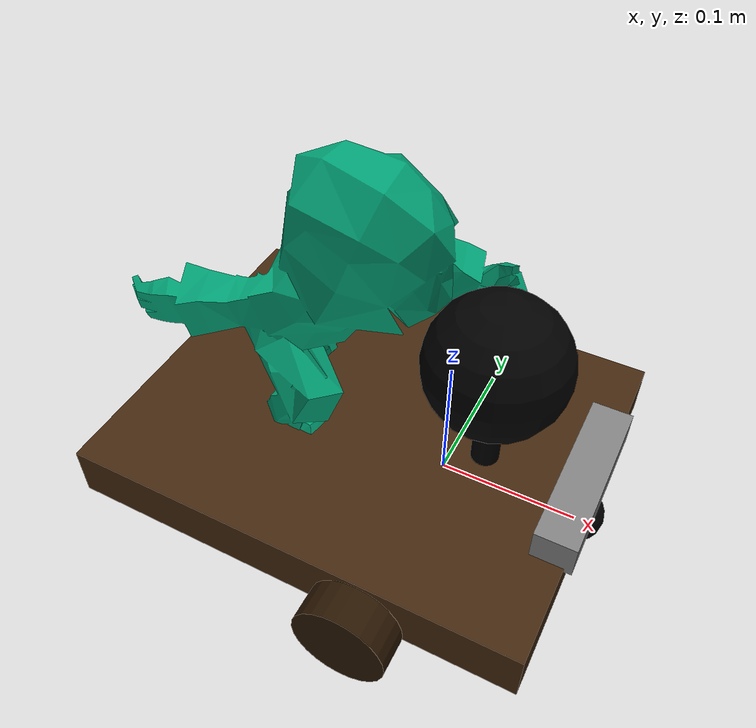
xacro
<?xml version="1.0" ?>
<robot name='robot' xmlns:xacro="http://ros.org/wiki/xacro">

    <!--xacro:include filename="$(find monk)/urdf/gazebo.urdf.xacro" /-->
    <!--xacro:include filename="$(find robot_description)/urdf/lidar.urdf.xacro" /-->
    <!--xacro:include filename="$(find robot_description)/urdf/depth.urdf.xacro" /-->

    <xacro:property name="chassis_length" value="0.335"/>
    <xacro:property name="chassis_width" value="0.265"/>
    <xacro:property name="chassis_height" value="0.04"/>
    <xacro:property name="wheel_radius" value="0.033"/>
    <xacro:property name="wheel_thickness" value="0.026"/>
    <xacro:property name="wheel_mass" value="0.05"/>
    <xacro:property name="wheel_offset_x" value="0.226"/>
    <xacro:property name="wheel_offset_y" value="0.1485"/>
    <xacro:property name="wheel_offset_z" value="0.01"/>
    <xacro:property name="caster_wheel_radius" value="0.03"/>
    <xacro:property name="caster_wheel_mass" value="0.01"/>
    <xacro:property name="caster_wheel_offset_x" value="0.075"/>
    <xacro:property name="caster_wheel_offset_z" value="${wheel_offset_z - wheel_radius + caster_wheel_radius}"/>
    <xacro:property name="mass" value="1.0"/>

    <xacro:property name="monk_mass" value="0.01"/>
    <xacro:property name="monk_radius" value="0.05"/>
    <xacro:property name="monk_height" value="0.2"/>

    <gazebo>
        <plugin
            filename="gz-sim-joint-state-publisher-system"
            name="gz::sim::systems::JointStatePublisher">
        </plugin>

        <plugin
            filename="gz-sim-diff-drive-system"
            name="gz::sim::systems::DiffDrive">
            <left_joint>left_wheel_joint</left_joint>
            <right_joint>right_wheel_joint</right_joint>
            <child_frame_id>robot/base_link</child_frame_id>
            <wheel_separation>${2*wheel_offset_y}</wheel_separation>
            <wheel_radius>${wheel_radius}</wheel_radius>
            <odom_publish_frequency>10</odom_publish_frequency>
        </plugin>

        <plugin filename="gz-sim-sensors-system"
                name="gz::sim::systems::Sensors">
            <render_engine>ogre2</render_engine>
        </plugin>

        <plugin filename="gz-sim-imu-system"
                name="gz::sim::systems::Imu">
        </plugin>
    </gazebo>

    <material name="white">
        <color rgba="1 1 1 1" />
    </material>

    <material name="orange">
        <color rgba="1 0.3 0.1 1"/>
    </material>

    <material name="blue">
        <color rgba="0.2 0.2 1 1"/>
    </material>

    <material name="black">
        <color rgba="0 0 0 1"/>
    </material>

    <material name="red">
        <color rgba="1 0 0 1"/>
    </material>

    <material name="kor_1">
        <color rgba="${42/256} ${22/256} ${2/256} 1"/>
    </material>

    <material name="kor_2">
        <color rgba="${67/256} ${39/256} ${15/256} 1"/>
    </material>

    <link name="base_link">
    </link>

    <link name="base_footprint">
    </link>

    <link name="monk">
        <visual>
            <geometry>
                <!--mesh filename="$(find monk)/source/Sketchfab_2017_11_01_03_49_01.dae" scale="0.1 0.1 0.1"/-->
                <mesh filename="file:///home/evrey/ros2_ws/6/ex01/monk/source/Sketchfab_2017_11_01_03_49_01.dae" scale="0.2 0.2 0.2"/>
            </geometry>
            <origin rpy="0 0 0" xyz="0 0 0"/>
        </visual>
        <collision>
            <geometry>
                <mesh filename="file:///home/evrey/ros2_ws/6/ex01/monk/source/Sketchfab_2017_11_01_03_49_01.dae" scale="0.2 0.2 0.2"/>
            </geometry>
            <origin rpy="0 0 0" xyz="0 0 0"/>
        </collision>
        <inertial>
            <origin xyz="0 0 ${monk_height/2}" rpy="0 0 0"/>
            <mass value="${monk_mass}" />
            <inertia ixx="${(1/12) * monk_mass * (3*monk_radius*monk_radius + monk_height*monk_height)}" ixy="0.0" ixz="0.0"
                     iyy="${(1/12) * monk_mass * (3*monk_radius*monk_radius + monk_height*monk_height)}" iyz="0.0"
                     izz="${(1/2) * monk_mass * (monk_radius*monk_radius)}" />
        </inertial>
    </link>

    <joint name="monk_joint" type="fixed">
        <parent link="base_link"/>
        <child link="monk"/>
        <origin xyz="${- chassis_length / 3} 0 ${chassis_height - wheel_offset_z - 0.01}" rpy="0 0 ${pi/2}"/>
    </joint>

    <joint name="base_footprint_joint" type="fixed">
        <parent link="base_link"/>
        <child link="base_footprint"/>
        <origin xyz="0 0 ${-chassis_height}" rpy="0 0 0"/>
    </joint>

    <joint name="chassis_joint" type="fixed">
        <parent link="base_link"/>
        <child link="chassis"/>
        <origin xyz="${-wheel_offset_x} 0 ${-wheel_offset_z}"/>
    </joint>

    <link name='chassis'>

        <inertial>
            <origin xyz="${chassis_length/2} 0 ${chassis_height/2}" rpy="0 0 0"/>
            <mass value="${mass}" />
            <inertia ixx="${(1/12) * mass * (chassis_width*chassis_width+chassis_height*chassis_height)}" ixy="0.0" ixz="0.0"
                     iyy="${(1/12) * mass * (chassis_length*chassis_length+chassis_height*chassis_height)}" iyz="0.0"
                     izz="${(1/12) * mass * (chassis_length*chassis_length+chassis_width*chassis_width)}" />
        </inertial>
        <visual>
            <origin xyz="${chassis_length/2} 0 ${chassis_height/2}"/>
            <geometry>
                <box size="${chassis_length} ${chassis_width} ${chassis_height}"/>
            </geometry>
            <material name="kor_2"/>
        </visual>
        <collision>
            <origin xyz="${chassis_length/2} 0 ${chassis_height/2}"/>
            <geometry>
                <box size="${chassis_length} ${chassis_width} ${chassis_height}"/>
            </geometry>
        </collision>

    </link>

    <gazebo reference="chassis">
        <material>Gazebo/Orange</material>
    </gazebo>

    <joint name="left_wheel_joint" type="continuous">
        <parent link="base_link"/>
        <child link="left_wheel"/>
        <origin xyz="0 ${wheel_offset_y} 0" rpy="-${pi/2} 0 0" />
        <axis xyz="0 0 1"/>
    </joint>

    <link name="left_wheel">
        <visual>
            <geometry>
                <cylinder radius="${wheel_radius}" length="${wheel_thickness}"/>
            </geometry>
            <material name="kor_1"/>
        </visual>
        <collision>
            <geometry>
                <sphere radius="${wheel_radius}"/>
            </geometry>
        </collision>
        <inertial>
            <origin xyz="0 0 0" rpy="0 0 0"/>
            <mass value="${wheel_mass}" />
            <inertia ixx="${(1/12) * wheel_mass * (3*wheel_radius*wheel_radius + wheel_thickness*wheel_thickness)}" ixy="0.0" ixz="0.0"
                     iyy="${(1/12) * wheel_mass * (3*wheel_radius*wheel_radius + wheel_thickness*wheel_thickness)}" iyz="0.0"
                     izz="${(1/2) * wheel_mass * (wheel_radius*wheel_radius)}" />
        </inertial>
    </link>

    <gazebo reference="left_wheel">
        <material>Gazebo/Blue</material>
    </gazebo>

    <joint name="right_wheel_joint" type="continuous">
        <parent link="base_link"/>
        <child link="right_wheel"/>
        <origin xyz="0 ${-wheel_offset_y} 0" rpy="${pi/2} 0 0" />
        <axis xyz="0 0 -1"/>
    </joint>

    <link name="right_wheel">
        <visual>
            <geometry>
                <cylinder radius="${wheel_radius}" length="${wheel_thickness}"/>
            </geometry>
            <material name="kor_1"/>
        </visual>
        <collision>
            <geometry>
                <sphere radius="${wheel_radius}"/>
            </geometry>
        </collision>
        <inertial>
            <origin xyz="0 0 0" rpy="0 0 0"/>
            <mass value="${wheel_mass}" />
            <inertia ixx="${(1/12) * wheel_mass * (3*wheel_radius*wheel_radius + wheel_thickness*wheel_thickness)}" ixy="0.0" ixz="0.0"
                     iyy="${(1/12) * wheel_mass * (3*wheel_radius*wheel_radius + wheel_thickness*wheel_thickness)}" iyz="0.0"
                     izz="${(1/2) * wheel_mass * (wheel_radius*wheel_radius)}" />
        </inertial>
    </link>

    <gazebo reference="right_wheel">
        <material>Gazebo/Blue</material>
    </gazebo>

    <joint name="caster_wheel_joint" type="fixed">
        <parent link="chassis"/>
        <child link="caster_wheel"/>
        <origin xyz="${caster_wheel_offset_x} 0 ${caster_wheel_offset_z}"/>
    </joint>

    <link name="caster_wheel">
        <visual>
            <geometry>
                <sphere radius="${caster_wheel_radius}"/>
            </geometry>
            <material name="kor_1"/>
        </visual>
        <collision>
            <geometry>
                <sphere radius="${caster_wheel_radius}"/>
            </geometry>
        </collision>
        <inertial>
            <origin xyz="0 0 0" rpy="0 0 0"/>
            <mass value="${caster_wheel_mass}" />
            <inertia ixx="${(2/5) * caster_wheel_mass * (caster_wheel_radius*caster_wheel_radius)}" ixy="0.0" ixz="0.0"
                     iyy="${(2/5) * caster_wheel_mass * (caster_wheel_radius*caster_wheel_radius)}" iyz="0.0"
                     izz="${(2/5) * caster_wheel_mass * (caster_wheel_radius*caster_wheel_radius)}" />
        </inertial>
    </link>

    <gazebo reference="caster_wheel">
        <material>Gazebo/White</material>
        <mu1 value="0.001"/>
        <mu2 value="0.001"/>
    </gazebo>

    <joint name="laser_joint" type="fixed">
        <parent link="base_link"/>
        <child link="laser_frame"/>
        <origin xyz="0.03 0 0.12" rpy="0 0 0"/>
    </joint>

    <link name="laser_frame">
        <visual>
            <geometry>
                <sphere radius="0.05"/>
            </geometry>
            <material name="black"/>
        </visual>
        <visual>
            <origin xyz="0 0 -0.05"/>
            <geometry>
                <cylinder radius="0.01" length="0.1"/>
            </geometry>
            <material name="black"/>
        </visual>
        <collision>
            <geometry>
                <cylinder radius="0.05" length="0.04"/>
            </geometry>
        </collision>
        <inertial>
            <origin xyz="0 0 0" rpy="0 0 0"/>
            <mass value="0.1" />
            <inertia ixx="${(1/12) * 0.1 * (3*0.05*0.05 + 0.04*0.04)}" ixy="0.0" ixz="0.0"
                     iyy="${(1/12) * 0.1 * (3*0.05*0.05 + 0.04*0.04)}" iyz="0.0"
                     izz="${(1/2) * 0.1 * (0.05*0.05)}" />
        </inertial>
    </link>

    <gazebo reference="laser_frame">
        <material>Gazebo/Black</material>

        <sensor name='laser_sensor_frame' type='gpu_lidar'>"
            <gz_frame_id>robot/laser_frame</gz_frame_id>
            <pose> 0 0 0 0 0 0 </pose>
            <visualize>true</visualize>
            <always_on>true</always_on>
            <update_rate>5</update_rate>
            <ray>
                <scan>
                    <horizontal>
                        <samples>360</samples>
                        <min_angle>-3.14</min_angle>
                        <max_angle>3.14</max_angle>
                    </horizontal>
                </scan>
                <range>
                    <min>0.3</min>
                    <max>12</max>
                </range>
                <noise>
                    <type>gaussian</type>
                    <mean>0.0</mean>
                    <stddev>0.007</stddev>
                </noise>
            </ray>
        </sensor>
    </gazebo>

    <xacro:property name="M_PI" value="3.1415926535897931" />

    <joint name="depth_joint" type="fixed">
        <parent link="base_link"/>
        <child link="depth_frame"/>
        <origin xyz="0.1 0 ${chassis_height}" rpy="${M_PI/2} 0 0"/>
    </joint>

    <material name="aluminum">
      <color rgba="0.5 0.5 0.5 1"/>
    </material>

    <link name="depth_frame">
        <visual>
            <origin xyz="0 0 0" rpy="${M_PI/2} 0 ${M_PI/2}"/>
            <geometry>
                <!--mesh filename="file://$(find robot_description)/urdf/d455.stl" scale="0.001 0.001 0.001"/-->
                <box size="0.026 0.124 0.029"/>
            </geometry>
            <material name="aluminum"/>
        </visual>
        <collision>
            <origin xyz="0.00465 -0.0475 0" rpy="${M_PI/2} 0 ${M_PI/2}"/>
            <geometry>
                <box size="0.026 0.124 0.029"/>
            </geometry>
        </collision>
        <inertial>
            <origin xyz="0 0 0" rpy="0 0 0"/>
            <mass value="0.116" />
            <inertia ixx="${(1/12) * 0.116 * (0.026*0.026+0.029*0.029)}" ixy="0.0" ixz="0.0"
                     iyy="${(1/12) * 0.116 * (0.124*0.124+0.029*0.029)}" iyz="0.0"
                     izz="${(1/12) * 0.116 * (0.124*0.124+0.026*0.026)}" />
        </inertial>
    </link>

    <gazebo reference="depth_frame">
        <sensor name='depth_sensor_frame' type='depth_camera'>"
            <gz_frame_id>robot/depth_frame</gz_frame_id>
            <pose> 0 0 0 0 0 0 </pose>
            <always_on>true</always_on>
            <update_rate>10</update_rate>
            <camera>
                <horizontal_fov>1.51843645</horizontal_fov>
                <image>
                    <width>848</width>
                    <height>480</height>
                    <format>R_FLOAT32</format>
                </image>
                <clip>
                    <near>0.1</near>
                    <far>10</far>
                </clip>
                <lens>
                    <intrinsics>
                    <fx>421.61578369140625</fx>
                    <fy>421.61578369140625</fy>
                    <cx>422.2854309082031</cx>
                    <cy>236.57237243652344</cy>
                    <s>0</s>
                    </intrinsics>
                </lens>
                <noise>
                    <type>gaussian</type>
                    <mean>0.0</mean>
                    <stddev>0.007</stddev>
                </noise>
            </camera>
        </sensor>
        <sensor name="color_sensor_frame" type="camera">
            <gz_frame_id>robot/depth_frame</gz_frame_id>
            <pose>0 0 0 0 0 0</pose>
            <update_rate>30</update_rate>
            <always_on>true</always_on>
            <camera>
                <horizontal_fov>1.20427718</horizontal_fov>
                <image>
                    <width>848</width>
                    <height>480</height>
                </image>
                <clip>
                    <near>0.1</near>
                    <far>50</far>
                </clip>
                <lens>
                    <intrinsics>
                    <fx>615.9603271484375</fx>
                    <fy>616.227294921875</fy>
                    <cx>419.83026123046875</cx>
                    <cy>245.1431427001953</cy>
                    <s>0</s>
                    </intrinsics>
                </lens>
            </camera>
        </sensor>
    </gazebo>

    <joint name="imu_joint" type="fixed">
        <parent link="base_link"/>
        <child link="imu_frame"/>
        <origin xyz="0.1 0 ${caster_wheel_offset_z}" rpy="0 0 0"/>
    </joint>

    <link name="imu_frame">
        <visual>
            <geometry>
                <sphere radius="0.02"/>
            </geometry>
            <material name="black"/>
        </visual>
        <collision>
            <geometry>
                <sphere radius="0.02"/>
            </geometry>
        </collision>
        <inertial>
            <origin xyz="0 0 0" rpy="0 0 0"/>
            <mass value="0.001" />
            <inertia ixx="${(2/5) * 0.02 * (0.05*0.05)}" ixy="0.0" ixz="0.0"
                     iyy="${(2/5) * 0.02 * (0.05*0.05)}" iyz="0.0"
                     izz="${(2/5) * 0.02 * (0.05*0.05)}" />
        </inertial>
    </link>

    <gazebo reference="imu_frame">
        <material>Gazebo/Black</material>

        <sensor name='imu_sensor_frame' type='imu'>"
            <gz_frame_id>robot/imu_frame</gz_frame_id>
            <always_on>1</always_on>
            <update_rate>1</update_rate>
            <visualize>true</visualize>
        </sensor>
    </gazebo>

</robot>
